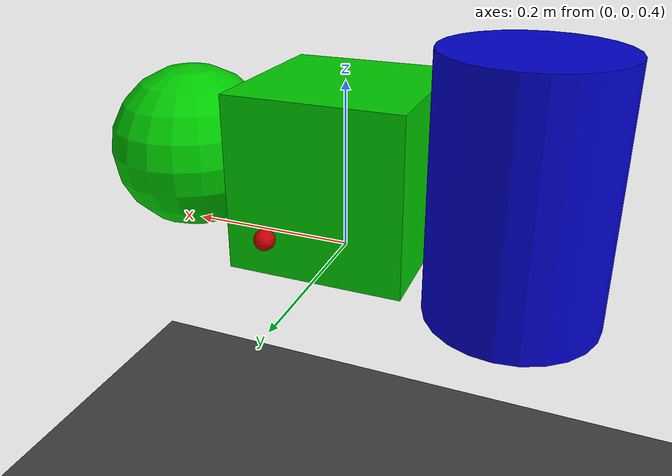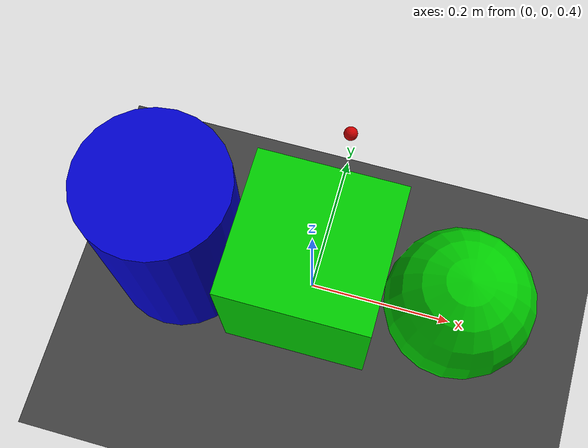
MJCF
<mujoco model="simple_scene">
    <visual>
        <global offwidth="1024" offheight="1024"/>
    </visual>
    <option timestep="0.005" gravity="0 0 -9.81"/>

    <asset>
        <texture name="plane_texture" type="2d" builtin="checker" rgb1="0.2 0.2 0.2" rgb2="0.3 0.3 0.3" width="512" height="512"/>
        <material name="plane_material" texture="plane_texture" texrepeat="5 5" reflectance="0"/>
    </asset>

    <worldbody>
        <geom type="plane" size="1 1 0.1" material="plane_material"/>

        <body pos="0 0 0.5">
            <geom type="box" size="0.1 0.1 0.1" rgba="0 0.8 0 1"/>
        </body>

        <body pos="0.2 0 0.5">
            <geom type="sphere" size="0.1" rgba="0 0.8 0 1"/>
        </body>

        <body pos="-0.2 0 0.5">
            <geom type="cylinder" size="0.1 0.15" rgba="0 0 0.8 1"/>
        </body>

        <body pos="0 0.2 0.5">
            <geom type="sphere" size="0.01" rgba="0.8 0 0 1"/>
        </body>

        <!-- Cameras -->
        <camera name="camera1" pos="0 -0.1 1" fovy="90"/>
        <camera name="camera2" pos="0 0.1 1" fovy="90"/>
    </worldbody>
</mujoco>
